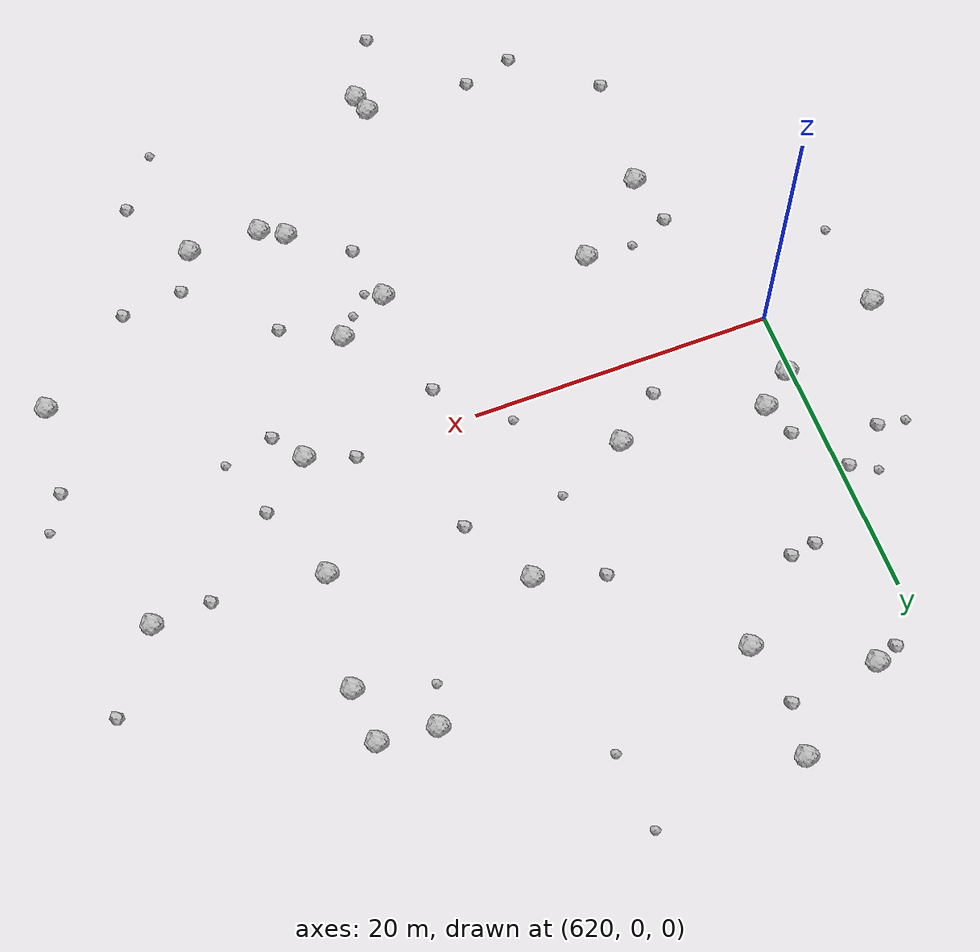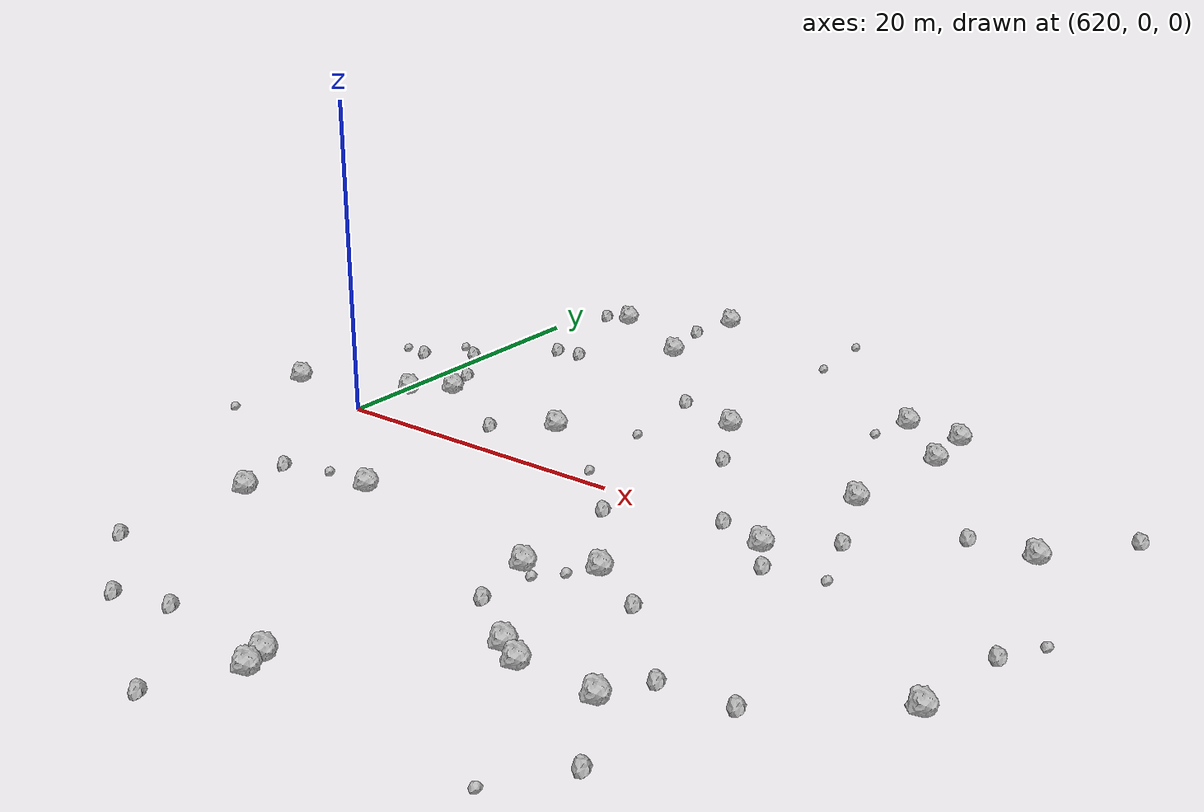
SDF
<sdf version="1.6">
 <world name="default">
  <include><uri>model://sun</uri></include>
  <model name="rock1_16_3">
   <include><uri>model://rock1</uri><pose>648.5790001897852 -17.72590846341297 0.5 0 0 0</pose></include>
  </model>
  <model name="rock1_16_4">
   <include><uri>model://rock1</uri><pose>620.4264899946327 4.195370480635631 0.5 0 0 0</pose></include>
  </model>
  <model name="rock1_16_5">
   <include><uri>model://rock1</uri><pose>653.4917458175269 14.63965360171764 0.5 0 0 0</pose></include>
  </model>
  <model name="rock1_16_6">
   <include><uri>model://rock1</uri><pose>646.0540420990087 -8.207750622751725 0.5 0 0 0</pose></include>
  </model>
  <model name="rock1_16_7">
   <include><uri>model://rock1</uri><pose>652.4320745035816 7.0537379044818 0.5 0 0 0</pose></include>
  </model>
  <model name="rock1_16_8">
   <include><uri>model://rock1</uri><pose>623.89328858317 -12.62094601160155 0.5 0 0 0</pose></include>
  </model>
  <model name="rock1_16_9">
   <include><uri>model://rock1</uri><pose>663.4467581041359 6.481572622344757 0.5 0 0 0</pose></include>
  </model>
  <model name="rock1_16_10">
   <include><uri>model://rock1</uri><pose>647.0158774640546 -16.81848186817227 0.5 0 0 0</pose></include>
  </model>
  <model name="rock1_16_11">
   <include><uri>model://rock1</uri><pose>651.1782536947655 -0.929041307247573 0.5 0 0 0</pose></include>
  </model>
  <model name="rock1_16_12">
   <include><uri>model://rock1</uri><pose>629.9571936509691 28.092181915549382 0.5 0 0 0</pose></include>
  </model>
  <model name="rock1_16_13">
   <include><uri>model://rock1</uri><pose>630.189923863719 20.56640352314043 0.5 0 0 0</pose></include>
  </model>
  <model name="rock1_16_14">
   <include><uri>model://rock1</uri><pose>629.145681633351 -8.238093168288597 0.5 0 0 0</pose></include>
  </model>
  <model name="rock1_16_15">
   <include><uri>model://rock1</uri><pose>653.3379964215753 -17.83863577319017 0.5 0 0 0</pose></include>
  </model>
  <model name="rock1_16_16">
   <include><uri>model://rock1</uri><pose>649.5193506112009 18.67772169113703 0.5 0 0 0</pose></include>
  </model>
  <model name="rock1_16_17">
   <include><uri>model://rock1</uri><pose>642.576520378991 -10.178709902054464 0.5 0 0 0</pose></include>
  </model>
  <model name="rock1_16_18">
   <include><uri>model://rock1</uri><pose>640.8117625215357 11.734406602548368 0.5 0 0 0</pose></include>
  </model>
  <model name="rock1_16_19">
   <include><uri>model://rock1</uri><pose>665.3383210441662 -9.98447432189825 0.5 0 0 0</pose></include>
  </model>
  <model name="rock1_16_20">
   <include><uri>model://rock1</uri><pose>623.5017457860939 24.19061887838442 0.5 0 0 0</pose></include>
  </model>
  <model name="rock1_16_21">
   <include><uri>model://rock1</uri><pose>653.2495526601913 18.28744565487453 0.5 0 0 0</pose></include>
  </model>
  <model name="rock1_16_22">
   <include><uri>model://rock1</uri><pose>613.1249651656444 1.4287727748330816 0.5 0 0 0</pose></include>
  </model>
  <model name="rock1_16_23">
   <include><uri>model://rock1</uri><pose>622.6686863298361 6.02280461042367 0.5 0 0 0</pose></include>
  </model>
  <model name="rock1_16_24">
   <include><uri>model://rock1</uri><pose>638.6961734845092 -24.22612116924338 0.5 0 0 0</pose></include>
  </model>
  <model name="rock1_16_25">
   <include><uri>model://rock1</uri><pose>639.0743036416646 -25.512135908347098 0.5 0 0 0</pose></include>
  </model>
  <model name="rock1_16_26">
   <include><uri>model://rock1</uri><pose>632.219135085643 5.104857704856393 0.5 0 0 0</pose></include>
  </model>
  <model name="rock2_16_0">
   <include><uri>model://rock2</uri><pose>623.0938646615512 -20.5498983517391 0.3 0 0 0</pose></include>
  </model>
  <model name="rock2_16_1">
   <include><uri>model://rock2</uri><pose>654.7617455337182 -15.180740284582374 0.3 0 0 0</pose></include>
  </model>
  <model name="rock2_16_2">
   <include><uri>model://rock2</uri><pose>621.9393139119494 23.628874936630602 0.3 0 0 0</pose></include>
  </model>
  <model name="rock2_16_3">
   <include><uri>model://rock2</uri><pose>625.3737212837212 15.976179327891181 0.3 0 0 0</pose></include>
  </model>
  <model name="rock2_16_4">
   <include><uri>model://rock2</uri><pose>648.0883604405897 0.15086654232593233 0.3 0 0 0</pose></include>
  </model>
  <model name="rock2_16_5">
   <include><uri>model://rock2</uri><pose>658.8247911690983 -14.804640404500557 0.3 0 0 0</pose></include>
  </model>
  <model name="rock2_16_6">
   <include><uri>model://rock2</uri><pose>656.251605443502 -22.438746849737175 0.3 0 0 0</pose></include>
  </model>
  <model name="rock2_16_7">
   <include><uri>model://rock2</uri><pose>616.5580720178639 9.712941521216898 0.3 0 0 0</pose></include>
  </model>
  <model name="rock2_16_8">
   <include><uri>model://rock2</uri><pose>667.1444742157481 11.385634328070225 0.3 0 0 0</pose></include>
  </model>
  <model name="rock2_16_9">
   <include><uri>model://rock2</uri><pose>654.5827932387836 1.8034783478051217 0.3 0 0 0</pose></include>
  </model>
  <model name="rock2_16_10">
   <include><uri>model://rock2</uri><pose>649.7394156186875 -10.218332193159195 0.3 0 0 0</pose></include>
  </model>
  <model name="rock2_16_11">
   <include><uri>model://rock2</uri><pose>628.199097034635 -24.78774482332405 0.3 0 0 0</pose></include>
  </model>
  <model name="rock2_16_12">
   <include><uri>model://rock2</uri><pose>629.3072154569917 24.714529198161586 0.3 0 0 0</pose></include>
  </model>
  <model name="rock2_16_13">
   <include><uri>model://rock2</uri><pose>659.6431363921253 6.270995549983219 0.3 0 0 0</pose></include>
  </model>
  <model name="rock2_16_14">
   <include><uri>model://rock2</uri><pose>636.7501139284141 -29.79402321120057 0.3 0 0 0</pose></include>
  </model>
  <model name="rock2_16_15">
   <include><uri>model://rock2</uri><pose>641.9516230131505 -2.630252747301192 0.3 0 0 0</pose></include>
  </model>
  <model name="rock2_16_16">
   <include><uri>model://rock2</uri><pose>623.2160714328907 -9.108344554270364 0.3 0 0 0</pose></include>
  </model>
  <model name="rock2_16_17">
   <include><uri>model://rock2</uri><pose>631.5946609344339 -23.923574601527623 0.3 0 0 0</pose></include>
  </model>
  <model name="rock2_16_18">
   <include><uri>model://rock2</uri><pose>628.9326674256018 2.61453771946492 0.3 0 0 0</pose></include>
  </model>
  <model name="rock2_16_19">
   <include><uri>model://rock2</uri><pose>636.4617515021154 13.148978479487418 0.3 0 0 0</pose></include>
  </model>
  <model name="rock2_16_20">
   <include><uri>model://rock2</uri><pose>623.66674689644 15.740111937535659 0.3 0 0 0</pose></include>
  </model>
  <model name="rock2_16_21">
   <include><uri>model://rock2</uri><pose>643.4502966284591 7.042201232962192 0.3 0 0 0</pose></include>
  </model>
  <model name="rock2_16_22">
   <include><uri>model://rock2</uri><pose>621.8782264853115 8.297985005243959 0.3 0 0 0</pose></include>
  </model>
  <model name="rock2_16_23">
   <include><uri>model://rock2</uri><pose>666.1523484047075 -3.993718337140457 0.3 0 0 0</pose></include>
  </model>
  <model name="rock2_16_24">
   <include><uri>model://rock2</uri><pose>652.6257627042485 -3.0060061274266943 0.3 0 0 0</pose></include>
  </model>
  <model name="rock2_16_25">
   <include><uri>model://rock2</uri><pose>619.4472998926788 11.633294308254257 0.3 0 0 0</pose></include>
  </model>
  <model name="rock2_16_26">
   <include><uri>model://rock2</uri><pose>643.3088373298644 -14.122345331148194 0.3 0 0 0</pose></include>
  </model>
  <model name="rock3_16_0">
   <include><uri>model://rock3</uri><pose>640.280613949626 23.896046106451294 0.2 0 0 0</pose></include>
  </model>
  <model name="rock3_16_1">
   <include><uri>model://rock3</uri><pose>625.9087530750811 -8.087429085868031 0.2 0 0 0</pose></include>
  </model>
  <model name="rock3_16_2">
   <include><uri>model://rock3</uri><pose>639.9033414524491 28.988392112951793 0.2 0 0 0</pose></include>
  </model>
  <model name="rock3_16_3">
   <include><uri>model://rock3</uri><pose>644.8712512707338 -9.552835383905151 0.2 0 0 0</pose></include>
  </model>
  <model name="rock3_16_4">
   <include><uri>model://rock3</uri><pose>636.9518254980285 7.165670827547181 0.2 0 0 0</pose></include>
  </model>
  <model name="rock3_16_5">
   <include><uri>model://rock3</uri><pose>614.7008225255481 9.953984990624804 0.2 0 0 0</pose></include>
  </model>
  <model name="rock3_16_6">
   <include><uri>model://rock3</uri><pose>667.5144114172483 -1.6924189320207788 0.2 0 0 0</pose></include>
  </model>
  <model name="rock3_16_7">
   <include><uri>model://rock3</uri><pose>643.6371383988899 -10.855918077873 0.2 0 0 0</pose></include>
  </model>
  <model name="rock3_16_8">
   <include><uri>model://rock3</uri><pose>648.6052085157447 16.02567286400189 0.2 0 0 0</pose></include>
  </model>
  <model name="rock3_16_9">
   <include><uri>model://rock3</uri><pose>637.9158583991508 1.160953059069957 0.2 0 0 0</pose></include>
  </model>
  <model name="rock3_16_10">
   <include><uri>model://rock3</uri><pose>613.5380594631359 -4.669151361470103 0.2 0 0 0</pose></include>
  </model>
  <model name="rock3_16_11">
   <include><uri>model://rock3</uri><pose>653.5428296970356 -26.056901438438288 0.2 0 0 0</pose></include>
  </model>
  <model name="rock3_16_12">
   <include><uri>model://rock3</uri><pose>617.7998310105779 12.532829782642509 0.2 0 0 0</pose></include>
  </model>
  <model name="rock3_16_13">
   <include><uri>model://rock3</uri><pose>655.9350974240386 -2.244672431275532 0.2 0 0 0</pose></include>
  </model>
 </world>
</sdf>
